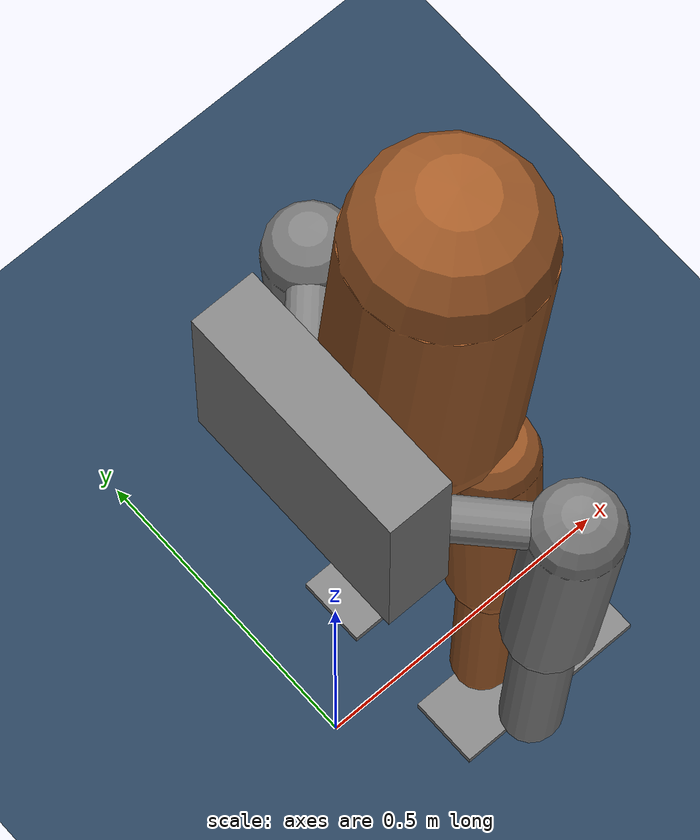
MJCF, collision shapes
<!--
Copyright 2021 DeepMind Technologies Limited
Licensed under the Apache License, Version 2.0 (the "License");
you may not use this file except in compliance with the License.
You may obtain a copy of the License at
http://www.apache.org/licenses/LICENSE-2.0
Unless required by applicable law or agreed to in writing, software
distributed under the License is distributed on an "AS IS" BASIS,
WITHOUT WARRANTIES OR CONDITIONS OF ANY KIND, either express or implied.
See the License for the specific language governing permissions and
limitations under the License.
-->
<mujoco model="exoskeleton">
  <compiler meshdir="meshes" angle="degree" autolimits="true"/>
  <option timestep="0.005"/>
  <!-- Timestep is set to X because the high level control runs at X kHz -->

  <asset>
    <texture type="skybox" builtin="gradient" rgb1=".3 .5 .7" rgb2="0 0 0" width="512" height="512"/>
    <texture name="body" type="cube" builtin="flat" mark="cross" width="127" height="1278"
             rgb1="0.8 0.6 0.4" rgb2="0.8 0.6 0.4" markrgb="1 1 1" random="0.01"/>
    <texture name="grid" type="2d" builtin="checker" width="512" height="512" rgb1=".1 .2 .3" rgb2=".2 .3 .4"/>
    <material name="grid" texture="grid" texrepeat="1 1" texuniform="true" reflectance=".2"/>
    <material name="mujoco_orange" texture="body" texuniform="true" rgba="0.8 0.6 .4 1"/>
    <material name="march_grey" rgba=".87 .89 .91 1"/>
    <mesh name="backpack"    file="HipBase.stl"/>
    <mesh name="L_foot"      file="FootLeft.stl"/>
    <mesh name="L_hip"       file="HipLeft.stl"/>
    <mesh name="L_thigh"     file="UpperLegLeft.stl"/>
    <mesh name="L_shin"      file="LowerLegLeft.stl"/>
    <mesh name="R_foot"     scale="1 -1 1"    file="FootLeft.stl"/>
    <mesh name="R_hip"      scale="1 -1 1"    file="HipLeft.stl"/>
    <mesh name="R_thigh"    scale="1 -1 1"    file="UpperLegLeft.stl"/>
    <mesh name="R_shin"     scale="1 -1 1"    file="LowerLegLeft.stl"/>
  </asset>

  <default>
    <motor ctrlrange="-1 1" ctrllimited="true"/>
    <geom contype="0" conaffinity="0" condim="1" solref="0.005 1"/>
    <equality solref="0.005 1"/>
    <default class="exoskeleton">
      <geom material="march_grey" group="2"/>
    </default>
    <default class="collision">
      <geom contype="1" group="3" type="capsule" density="2710"/>
      <default class="L_collision">
        <geom contype="2" conaffinity="4"/>
      </default>
      <default class="R_collision">
        <geom contype="4" conaffinity="2"/>
      </default>
    </default>
    <default class="ballast">
      <geom contype="0" material="mujoco_orange" conaffinity="0" group="2" type="capsule" density="985"/>
    </default>
    <default class="linear_joint">
        <joint damping="50" frictionloss="18" stiffness="0"/>
    </default>
    <default class="rotational_joint">
        <joint damping="50"  frictionloss="18" stiffness="0"/>
    </default>
  </default>

  <visual>
    <map force="0.1" zfar="30"/>
    <rgba haze="0.15 0.25 0.35 1"/>
    <quality shadowsize="4096"/>
    <global offwidth="800" offheight="800"/>
  </visual>

  <worldbody>
    <geom name="floor" size="0 0 .05" type="plane" material="grid" conaffinity="15" condim="3"/>
    <light name="spotlight" mode="targetbodycom" target="march_pelvis"
           diffuse=".8 .8 .8" specular="0.3 0.3 0.3" pos="0 -20 4" cutoff="10"/>
<!--    Body is .954 m high, so place at 1 m-->
    <body name="march_pelvis" pos="0 0 1" childclass="exoskeleton">
      <light name="top" pos="0 0 2" mode="trackcom"/>
      <camera name="diag" pos="1.1 -1.1 0.1" xyaxes="1 1 0 0 1 2" mode="trackcom"/>
      <camera name="side" pos="0 -3 1" xyaxes="1 0 0 0 1 2" mode="trackcom"/>
      <geom type="mesh" mesh="backpack" euler="0 0 180"/>
      <geom name="backpack" type="box" size=".051 .189 .165" pos="-.02 0 .13" class="collision"/>
      <geom name="pilot_torso" fromto=".147 0 .056 .190 0 .465" size=".141" class="ballast"/>
      <body name="L_hip" pos=".005 .065 0">
        <joint name="L_HAA" axis="-1 0 0" range="-10 5" class="linear_joint"/>
        <geom type="mesh" mesh="L_hip" euler="0 0 180"/>
        <geom name="L_hip" fromto="0 0 0 .184 .197 .002" size=".032" class="L_collision"/>
        <body name="L_thigh" pos=".184 .197 .002">
          <joint name="L_HFE" axis="0 1 0" range="-115 12" class="rotational_joint"/>
          <geom type="mesh" mesh="L_thigh" pos="0 .013 0" euler="0 0 180"/>
          <geom name="L_thigh" fromto="0 0 0 0 -.033 -.423" size=".069" class="L_collision"/>
          <geom name="L_pilot_thigh" fromto="0 -.166 -.05 0 -.149 -.423" size=".069" class="ballast"/>
          <body name="L_shin" pos="0 -.033 -.423">
            <joint name="L_KFE" axis="0 -1 0" range="-112 1" class="rotational_joint"/>
            <geom type="mesh" mesh="L_shin" pos="0 -.026 0" euler="0 0 180"/>
            <geom name="L_shin" fromto="0 0 0 0 -.018 -.401"  size=".047" class="L_collision"/>
            <geom name="L_pilot_shin" fromto="0 -.116 0 0 -.124 -.399"  size=".047" class="ballast"/>
            <body name="L_foot" pos="0 -.018 -.401">
              <joint name="L_ADPF" axis="0 1 0" range="-1 25" class="linear_joint"/>
              <geom type="mesh" mesh="L_foot" pos="0 -.019 0" euler="0 0 180"/>
              <geom name="L_foot" type="box" pos=".069 -.086 -.118" size=".159 .057 .007" class="L_collision"
                    friction=".33"/>
            </body>
          </body>
        </body>
      </body>
      <body name="R_hip" pos=".005 -.065 0">
        <joint name="R_HAA" axis="1 0 0" range="-10 5" class="linear_joint"/>
        <geom type="mesh" mesh="R_hip" euler="0 0 180"/>
        <geom name="R_hip" fromto="0 0 0 .184 -.197 .002" size=".032" class="R_collision"/>
        <body name="R_thigh" pos=".184 -.197 .002">
          <joint name="R_HFE" axis="0 1 0" range="-115 12" class="rotational_joint"/>
          <geom type="mesh" mesh="R_thigh" pos="0 -.013 0" euler="0 0 180"/>
          <geom name="R_thigh" fromto="0 0 0 0 .033 -.423" size=".069" class="R_collision"/>
          <geom name="R_pilot_thigh" fromto="0 .166 -.05 0 .149 -.423" size=".069" class="ballast"/>
          <body name="R_shin" pos="0 .033 -.423">
            <joint name="R_KFE" axis="0 -1 0" range="-112 1" class="rotational_joint"/>
            <geom type="mesh" mesh="R_shin" pos="0 .026 0" euler="0 0 180"/>
            <geom name="R_shin" fromto="0 0 0 0 .018 -.401"  size=".047" class="R_collision"/>
            <geom name="R_pilot_shin" fromto="0 .116 0 0 .124 -.399"  size=".047" class="ballast"/>
            <body name="R_foot" pos="0 .018 -.401">
              <joint name="R_ADPF" axis="0 1 0" range="-1 25" class="linear_joint"/>
              <geom type="mesh" mesh="R_foot" pos="0 .019 0" euler="0 0 180"/>
              <geom name="R_foot" type="box" pos=".069 .086 -.118" size=".159 .057 .007" class="R_collision"
                    friction=".33"/>
            </body>
          </body>
        </body>
      </body>
    </body>
  </worldbody>

  <actuator>
    <!-- User parameter is the maximum no-load motor RPM -->
    <motor name="left_hip_aa"     gear="300"  joint="L_HAA"   user="15" />
    <motor name="left_hip_fe"     gear="340" joint="L_HFE"    user="27"/>
    <motor name="left_knee"     gear="340"  joint="L_KFE"   user="27"/>
    <motor name="left_ankle"    gear="160"  joint="L_ADPF"  user="29"/>
    <motor name="right_hip_aa"     gear="300"  joint="R_HAA"   user="15"/>
    <motor name="right_hip_fe"     gear="340" joint="R_HFE"    user="27"/>
    <motor name="right_knee"     gear="340"  joint="R_KFE"   user="27"/>
    <motor name="right_ankle"    gear="160"  joint="R_ADPF"  user="29"/>
  </actuator>
</mujoco>
